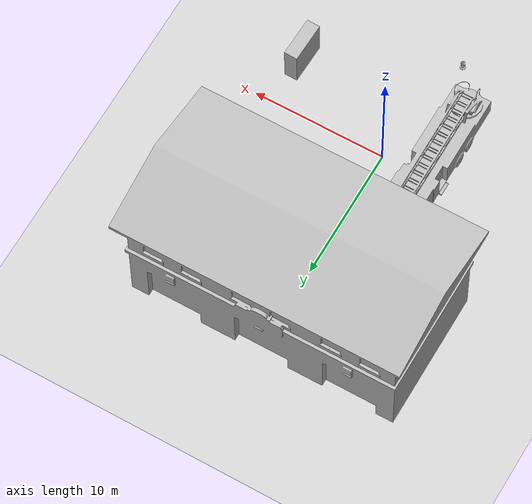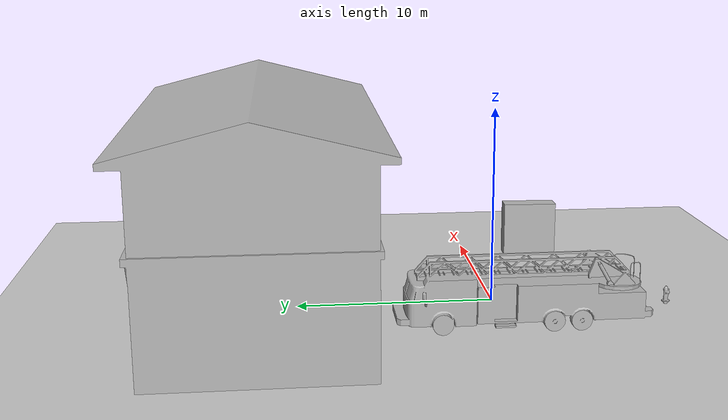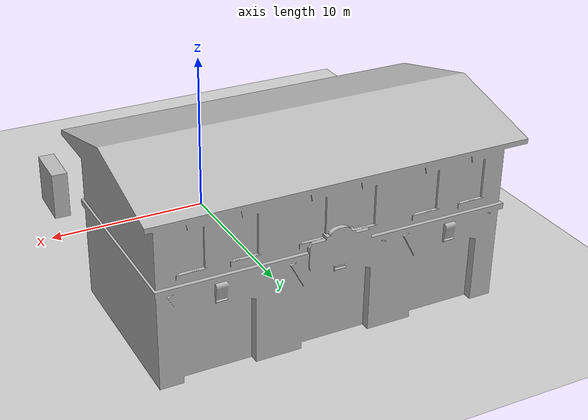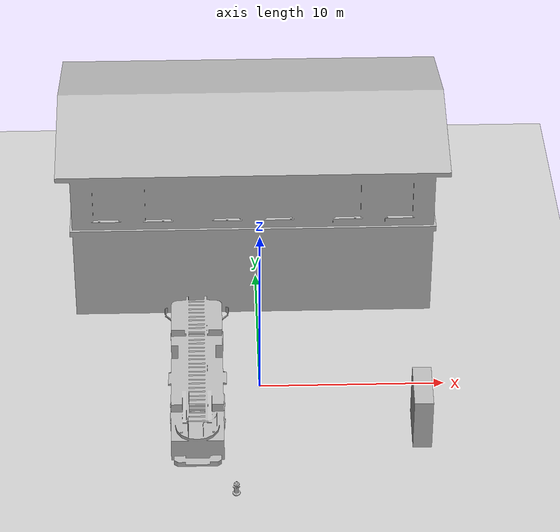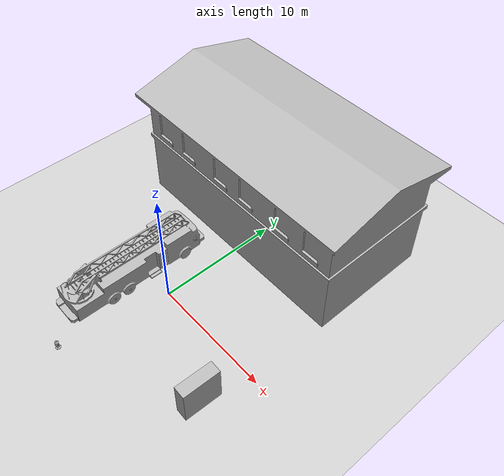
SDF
<sdf version="1.6">
 <world name="default">
  <light name="sun" type="directional">
   <pose>0 0 10 0 -0 0</pose>
   <diffuse>0.8 0.8 0.8 1</diffuse>
   <specular>0.2 0.2 0.2 1</specular>
   <attenuation>
    <range>1000</range>
    <constant>0.9</constant>
    <linear>0.01</linear>
    <quadratic>0.001</quadratic>
   </attenuation>
   <direction>-0.5 0.1 -0.9</direction>
  </light>
  <model name="ground_plane">
   <static>1</static>
   <link name="link">
    <collision name="collision">
     <geometry><plane><normal>0 0 1</normal><size>100 100</size></plane></geometry>
     <surface>
      <contact><collide_bitmask>65535</collide_bitmask></contact>
      <friction><ode><mu>100</mu><mu2>50</mu2></ode></friction>
     </surface>
    </collision>
    <visual name="visual">
     <cast_shadows>0</cast_shadows>
     <geometry><plane><normal>0 0 1</normal><size>100 100</size></plane></geometry>
     <material>
      <script><uri>file://media/materials/scripts/gazebo.material</uri><name>Gazebo/Grey</name></script>
     </material>
    </visual>
   </link>
  </model>
  <gravity>0 0 -9.8</gravity>
  <magnetic_field>6e-06 2.3e-05 -4.2e-05</magnetic_field>
  <atmosphere type="adiabatic"/>
  <physics name="default_physics" default="0" type="ode">
   <max_step_size>0.001</max_step_size>
   <real_time_factor>1</real_time_factor>
   <real_time_update_rate>1000</real_time_update_rate>
  </physics>
  <scene><ambient>0.4 0.4 0.4 1</ambient><background>0.7 0.7 0.7 1</background><shadows>1</shadows></scene>
  <spherical_coordinates>
   <surface_model>EARTH_WGS84</surface_model>
   <latitude_deg>0</latitude_deg>
   <longitude_deg>0</longitude_deg>
   <elevation>0</elevation>
   <heading_deg>0</heading_deg>
  </spherical_coordinates>
  <model name="fire_truck">
   <static>1</static>
   <link name="link">
    <collision name="collision">
     <geometry>
      <mesh><scale>0.1 0.1 0.1</scale><uri>model://fire_truck/meshes/fire_truck.obj</uri></mesh>
     </geometry>
    </collision>
    <visual name="visual">
     <geometry>
      <mesh><scale>0.1 0.1 0.1</scale><uri>model://fire_truck/meshes/fire_truck.obj</uri></mesh>
     </geometry>
    </visual>
   </link>
   <pose>-3.39517 -0.516011 0 0 -0 0</pose>
  </model>
  <model name="fire_station">
   <static>1</static>
   <link name="link">
    <collision name="main">
     <pose>0 -0.135 5 0 -0 0</pose>
     <geometry><box><size>19.98 9.68 10</size></box></geometry>
    </collision>
    <collision name="front_top">
     <pose>0 4.957 7 0 -0 0</pose>
     <geometry><box><size>20 0.515 6</size></box></geometry>
    </collision>
    <collision name="column_0">
     <pose>9.333 4.957 2 0 -0 0</pose>
     <geometry><box><size>1.315 0.515 4</size></box></geometry>
    </collision>
    <collision name="column_1">
     <pose>3.33 4.957 2 0 -0 0</pose>
     <geometry><box><size>2.63 0.515 4</size></box></geometry>
    </collision>
    <collision name="column_2">
     <pose>-3.33 4.957 2 0 -0 0</pose>
     <geometry><box><size>2.63 0.515 4</size></box></geometry>
    </collision>
    <collision name="column_3">
     <pose>-9.333 4.957 2 0 -0 0</pose>
     <geometry><box><size>1.315 0.515 4</size></box></geometry>
    </collision>
    <collision name="roof_back">
     <pose>0 -2.742 10.467 0.25 -0 0</pose>
     <geometry><box><size>21.47 6.12 0.28</size></box></geometry>
    </collision>
    <collision name="roof_front">
     <pose>0 3.12 10.467 -0.25 0 0</pose>
     <geometry><box><size>21.47 6.12 0.28</size></box></geometry>
    </collision>
    <collision name="roof_base">
     <pose>0 0.188 9.705 0 -0 0</pose>
     <geometry><box><size>21.47 11.86 0.28</size></box></geometry>
    </collision>
    <collision name="roof_filling_0">
     <pose>0 0.188 9.985 0 -0 0</pose>
     <geometry><box><size>21.47 9.53 0.28</size></box></geometry>
    </collision>
    <collision name="roof_filling_1">
     <pose>0 0.188 10.14 0 -0 0</pose>
     <geometry><box><size>21.47 8.41 0.28</size></box></geometry>
    </collision>
    <collision name="roof_filling_2">
     <pose>0 0.188 10.42 0 -0 0</pose>
     <geometry><box><size>21.47 6.25 0.28</size></box></geometry>
    </collision>
    <collision name="roof_filling_3">
     <pose>0 0.188 10.7 0 -0 0</pose>
     <geometry><box><size>21.47 4.05 0.28</size></box></geometry>
    </collision>
    <collision name="roof_filling_4">
     <pose>0 0.188 10.98 0 -0 0</pose>
     <geometry><box><size>21.47 1.83 0.28</size></box></geometry>
    </collision>
    <visual name="visual">
     <geometry><mesh><uri>model://fire_station/meshes/fire_station.dae</uri></mesh></geometry>
    </visual>
   </link>
   <pose>-0.200463 11.6165 0 0 -0 0</pose>
  </model>
  <model name="fire_hydrant">
   <static>1</static>
   <link name="link">
    <collision name="collision">
     <geometry><mesh><uri>model://fire_hydrant/meshes/fire_hydrant.dae</uri></mesh></geometry>
    </collision>
    <visual name="visual">
     <geometry><mesh><uri>model://fire_hydrant/meshes/fire_hydrant.dae</uri></mesh></geometry>
    </visual>
   </link>
   <pose>-1.42447 -8.78103 0 0 -0 0</pose>
  </model>
  <model name="brick_box_3x1x3">
   <static>1</static>
   <link name="chassis">
    <pose>0 0 1.5 0 -0 0</pose>
    <collision name="collision"><geometry><box><size>3 1 3</size></box></geometry></collision>
    <visual name="visual">
     <geometry><mesh><uri>model://brick_box_3x1x3/meshes/simple_box.dae</uri><scale>3 1 3</scale></mesh></geometry>
     <material>
      <script>
       <uri>model://brick_box_3x1x3/materials/scripts</uri>
       <uri>model://brick_box_3x1x3/materials/textures</uri>
       <name>BrickBox/Diffuse</name>
      </script>
     </material>
    </visual>
   </link>
   <pose>8.48824 -3.79374 0 0 0 -1.60198</pose>
  </model>
 </world>
</sdf>
